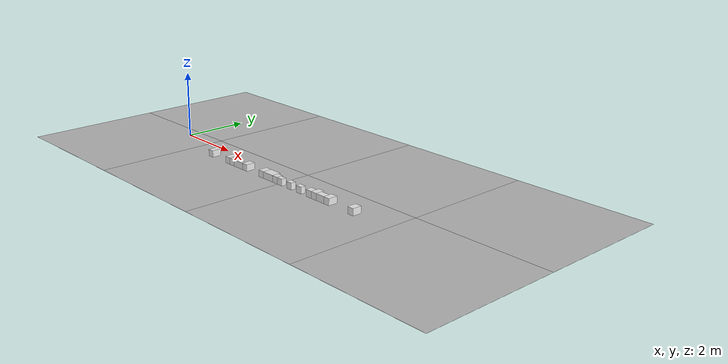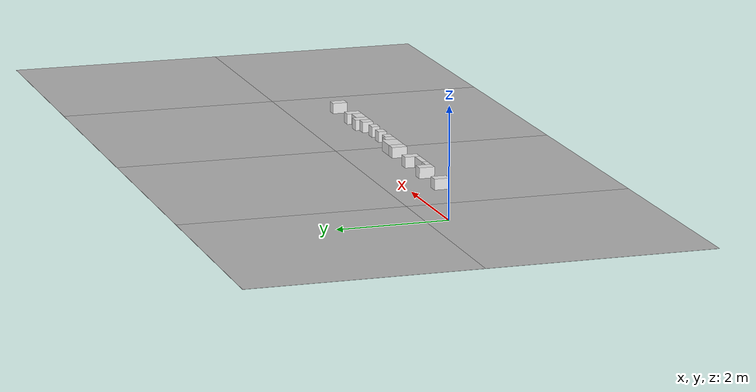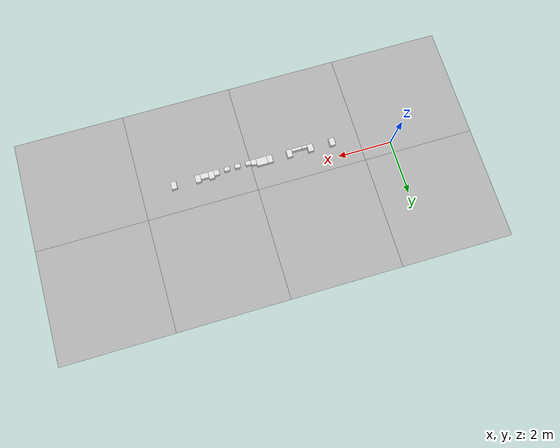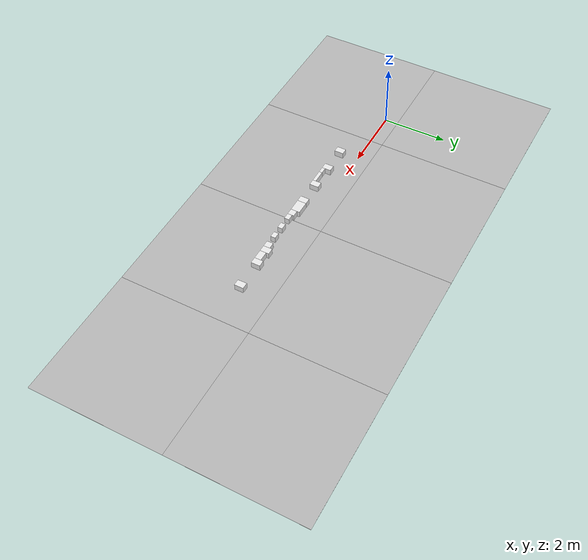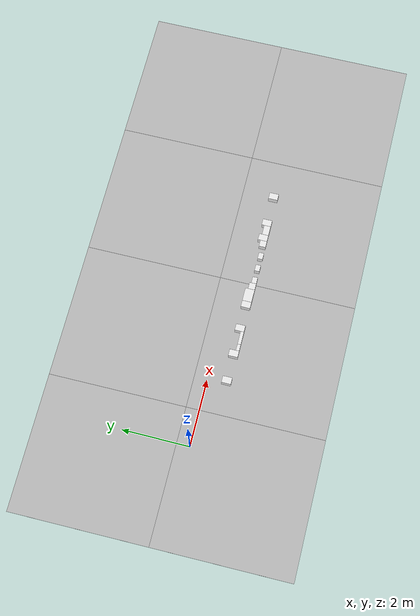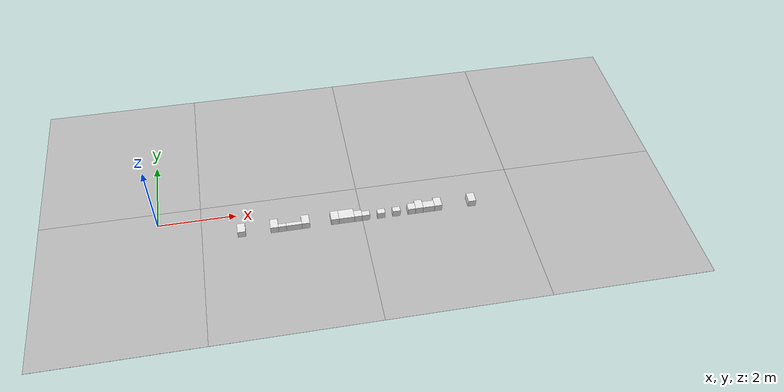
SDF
<sdf version='1.6'><world name='default'>
    <light name='sun_light' type='directional'>
      <pose frame=''>0 0 10 0 -0 0</pose>
      <diffuse>0.5 0.5 0.5 1</diffuse>
      <specular>0.1 0.1 0.1 1</specular>
      <direction>0.1 0.1 -0.9</direction>
      <attenuation>
        <range>20</range>
        <constant>0.5</constant>
        <linear>0.01</linear>
        <quadratic>0.001</quadratic>
      </attenuation>
      <cast_shadows>1</cast_shadows>
    </light>

    <model name='Tile/0-0'>
      <static>1</static>
      <link name='link'>
        <collision name='collision'>
          <geometry>
            <plane>
              <normal>0 0 1</normal>
              <size>4.096 4.096</size>
            </plane>
          </geometry>
          <surface>
            <friction>
              <ode>
                <mu>100</mu>
                <mu2>50</mu2>
              </ode>
              <torsional>
                <ode/>
              </torsional>
            </friction>
            <contact>
              <ode/>
            </contact>
            <bounce/>
          </surface>
          <max_contacts>10</max_contacts>
        </collision>
        <visual name='visual'>
          <cast_shadows>0</cast_shadows>
          <geometry>
            <plane>
              <normal>0 0 1</normal>
              <size>4.096 4.096</size>
            </plane>
          </geometry>
          <material>
            <script>
              <uri>file://materials/scripts</uri>
              <uri>file://materials/textures</uri>
              <name>Tile/aa44efc093d15b0d016b671cb8dad8b9b5925cd42bc6b331ef31decf4ba6863e</name>
            </script>
          </material>
        </visual>
        <self_collide>0</self_collide>
        <enable_wind>0</enable_wind>
        <kinematic>0</kinematic>
      </link>
      <pose frame=''>-0.952 -1.6520000000000001 0 0 -0 0</pose>
    </model>

    <model name='Tile/0-1'>
      <static>1</static>
      <link name='link'>
        <collision name='collision'>
          <geometry>
            <plane>
              <normal>0 0 1</normal>
              <size>4.096 4.096</size>
            </plane>
          </geometry>
          <surface>
            <friction>
              <ode>
                <mu>100</mu>
                <mu2>50</mu2>
              </ode>
              <torsional>
                <ode/>
              </torsional>
            </friction>
            <contact>
              <ode/>
            </contact>
            <bounce/>
          </surface>
          <max_contacts>10</max_contacts>
        </collision>
        <visual name='visual'>
          <cast_shadows>0</cast_shadows>
          <geometry>
            <plane>
              <normal>0 0 1</normal>
              <size>4.096 4.096</size>
            </plane>
          </geometry>
          <material>
            <script>
              <uri>file://materials/scripts</uri>
              <uri>file://materials/textures</uri>
              <name>Tile/6681b896b1587d54cb69aadeb5fb7247b4d6d500490292053e67105ac88ca889</name>
            </script>
          </material>
        </visual>
        <self_collide>0</self_collide>
        <enable_wind>0</enable_wind>
        <kinematic>0</kinematic>
      </link>
      <pose frame=''>-0.952 2.444 0 0 -0 0</pose>
    </model>

    <model name='Tile/1-0'>
      <static>1</static>
      <link name='link'>
        <collision name='collision'>
          <geometry>
            <plane>
              <normal>0 0 1</normal>
              <size>4.096 4.096</size>
            </plane>
          </geometry>
          <surface>
            <friction>
              <ode>
                <mu>100</mu>
                <mu2>50</mu2>
              </ode>
              <torsional>
                <ode/>
              </torsional>
            </friction>
            <contact>
              <ode/>
            </contact>
            <bounce/>
          </surface>
          <max_contacts>10</max_contacts>
        </collision>
        <visual name='visual'>
          <cast_shadows>0</cast_shadows>
          <geometry>
            <plane>
              <normal>0 0 1</normal>
              <size>4.096 4.096</size>
            </plane>
          </geometry>
          <material>
            <script>
              <uri>file://materials/scripts</uri>
              <uri>file://materials/textures</uri>
              <name>Tile/baae8030f17b517fedd6a6c1b124e129e2d28cf6dd4c158f0819fbb08102966b</name>
            </script>
          </material>
        </visual>
        <self_collide>0</self_collide>
        <enable_wind>0</enable_wind>
        <kinematic>0</kinematic>
      </link>
      <pose frame=''>3.144 -1.6520000000000001 0 0 -0 0</pose>
    </model>

    <model name='Tile/1-1'>
      <static>1</static>
      <link name='link'>
        <collision name='collision'>
          <geometry>
            <plane>
              <normal>0 0 1</normal>
              <size>4.096 4.096</size>
            </plane>
          </geometry>
          <surface>
            <friction>
              <ode>
                <mu>100</mu>
                <mu2>50</mu2>
              </ode>
              <torsional>
                <ode/>
              </torsional>
            </friction>
            <contact>
              <ode/>
            </contact>
            <bounce/>
          </surface>
          <max_contacts>10</max_contacts>
        </collision>
        <visual name='visual'>
          <cast_shadows>0</cast_shadows>
          <geometry>
            <plane>
              <normal>0 0 1</normal>
              <size>4.096 4.096</size>
            </plane>
          </geometry>
          <material>
            <script>
              <uri>file://materials/scripts</uri>
              <uri>file://materials/textures</uri>
              <name>Tile/13957a6de1f2afce18d7f1f64dacc2f21295e26ccf498256b0e1a51002cd5706</name>
            </script>
          </material>
        </visual>
        <self_collide>0</self_collide>
        <enable_wind>0</enable_wind>
        <kinematic>0</kinematic>
      </link>
      <pose frame=''>3.144 2.444 0 0 -0 0</pose>
    </model>

    <model name='Tile/2-0'>
      <static>1</static>
      <link name='link'>
        <collision name='collision'>
          <geometry>
            <plane>
              <normal>0 0 1</normal>
              <size>4.096 4.096</size>
            </plane>
          </geometry>
          <surface>
            <friction>
              <ode>
                <mu>100</mu>
                <mu2>50</mu2>
              </ode>
              <torsional>
                <ode/>
              </torsional>
            </friction>
            <contact>
              <ode/>
            </contact>
            <bounce/>
          </surface>
          <max_contacts>10</max_contacts>
        </collision>
        <visual name='visual'>
          <cast_shadows>0</cast_shadows>
          <geometry>
            <plane>
              <normal>0 0 1</normal>
              <size>4.096 4.096</size>
            </plane>
          </geometry>
          <material>
            <script>
              <uri>file://materials/scripts</uri>
              <uri>file://materials/textures</uri>
              <name>Tile/5adffa9d7c132cee285d02684bd9f3409010dbf481c82b755540d98dcae398a6</name>
            </script>
          </material>
        </visual>
        <self_collide>0</self_collide>
        <enable_wind>0</enable_wind>
        <kinematic>0</kinematic>
      </link>
      <pose frame=''>7.24 -1.6520000000000001 0 0 -0 0</pose>
    </model>

    <model name='Tile/2-1'>
      <static>1</static>
      <link name='link'>
        <collision name='collision'>
          <geometry>
            <plane>
              <normal>0 0 1</normal>
              <size>4.096 4.096</size>
            </plane>
          </geometry>
          <surface>
            <friction>
              <ode>
                <mu>100</mu>
                <mu2>50</mu2>
              </ode>
              <torsional>
                <ode/>
              </torsional>
            </friction>
            <contact>
              <ode/>
            </contact>
            <bounce/>
          </surface>
          <max_contacts>10</max_contacts>
        </collision>
        <visual name='visual'>
          <cast_shadows>0</cast_shadows>
          <geometry>
            <plane>
              <normal>0 0 1</normal>
              <size>4.096 4.096</size>
            </plane>
          </geometry>
          <material>
            <script>
              <uri>file://materials/scripts</uri>
              <uri>file://materials/textures</uri>
              <name>Tile/13957a6de1f2afce18d7f1f64dacc2f21295e26ccf498256b0e1a51002cd5706</name>
            </script>
          </material>
        </visual>
        <self_collide>0</self_collide>
        <enable_wind>0</enable_wind>
        <kinematic>0</kinematic>
      </link>
      <pose frame=''>7.24 2.444 0 0 -0 0</pose>
    </model>

    <model name='Tile/3-0'>
      <static>1</static>
      <link name='link'>
        <collision name='collision'>
          <geometry>
            <plane>
              <normal>0 0 1</normal>
              <size>4.096 4.096</size>
            </plane>
          </geometry>
          <surface>
            <friction>
              <ode>
                <mu>100</mu>
                <mu2>50</mu2>
              </ode>
              <torsional>
                <ode/>
              </torsional>
            </friction>
            <contact>
              <ode/>
            </contact>
            <bounce/>
          </surface>
          <max_contacts>10</max_contacts>
        </collision>
        <visual name='visual'>
          <cast_shadows>0</cast_shadows>
          <geometry>
            <plane>
              <normal>0 0 1</normal>
              <size>4.096 4.096</size>
            </plane>
          </geometry>
          <material>
            <script>
              <uri>file://materials/scripts</uri>
              <uri>file://materials/textures</uri>
              <name>Tile/51d233b85cde462f4055010ae3425bc9865214a12565d0ea43b0c4c1eb77e453</name>
            </script>
          </material>
        </visual>
        <self_collide>0</self_collide>
        <enable_wind>0</enable_wind>
        <kinematic>0</kinematic>
      </link>
      <pose frame=''>11.336 -1.6520000000000001 0 0 -0 0</pose>
    </model>

    <model name='Tile/3-1'>
      <static>1</static>
      <link name='link'>
        <collision name='collision'>
          <geometry>
            <plane>
              <normal>0 0 1</normal>
              <size>4.096 4.096</size>
            </plane>
          </geometry>
          <surface>
            <friction>
              <ode>
                <mu>100</mu>
                <mu2>50</mu2>
              </ode>
              <torsional>
                <ode/>
              </torsional>
            </friction>
            <contact>
              <ode/>
            </contact>
            <bounce/>
          </surface>
          <max_contacts>10</max_contacts>
        </collision>
        <visual name='visual'>
          <cast_shadows>0</cast_shadows>
          <geometry>
            <plane>
              <normal>0 0 1</normal>
              <size>4.096 4.096</size>
            </plane>
          </geometry>
          <material>
            <script>
              <uri>file://materials/scripts</uri>
              <uri>file://materials/textures</uri>
              <name>Tile/411268dc0bdaaa82f6734e64b6a3a6cf1dd292dfc683d008b9b3f96255a1e28b</name>
            </script>
          </material>
        </visual>
        <self_collide>0</self_collide>
        <enable_wind>0</enable_wind>
        <kinematic>0</kinematic>
      </link>
      <pose frame=''>11.336 2.444 0 0 -0 0</pose>
    </model>

    <model name='Obstacle/-5/0'>
      <pose frame=''>2.1 -0.5599999999999999 0.1 0 0 -0.0</pose>
      <link name='link'>
        <inertial>
          <mass>10</mass>
          <inertia>
            <ixx>0.166667</ixx>
            <ixy>0</ixy>
            <ixz>0</ixz>
            <iyy>0.166667</iyy>
            <iyz>0</iyz>
            <izz>0.166667</izz>
          </inertia>
        </inertial>
        <collision name='collision'>
          <geometry>
            <box>
              <size>0.2 0.28 0.2</size>
            </box>
          </geometry>
          <max_contacts>10</max_contacts>
          <surface>
            <contact>
              <ode/>
            </contact>
            <bounce/>
            <friction>
              <torsional>
                <ode/>
              </torsional>
              <ode/>
            </friction>
          </surface>
        </collision>
        <visual name='visual'>
          <geometry>
            <box>
              <size>0.2 0.28 0.2</size>
            </box>
          </geometry>
          <material>
            <script>
              <name>Gazebo/White</name>
              <uri>file://media/materials/scripts/gazebo.material</uri>
            </script>
          </material>
        </visual>
        <self_collide>0</self_collide>
        <enable_wind>0</enable_wind>
        <kinematic>0</kinematic>
      </link>
    </model>

    <model name='Obstacle/-12/0'>
      <pose frame=''>2.93 -0.5599999999999999 0.1 0 0 -0.0</pose>
      <link name='link'>
        <inertial>
          <mass>10</mass>
          <inertia>
            <ixx>0.166667</ixx>
            <ixy>0</ixy>
            <ixz>0</ixz>
            <iyy>0.166667</iyy>
            <iyz>0</iyz>
            <izz>0.166667</izz>
          </inertia>
        </inertial>
        <collision name='collision'>
          <geometry>
            <box>
              <size>0.2 0.28 0.2</size>
            </box>
          </geometry>
          <max_contacts>10</max_contacts>
          <surface>
            <contact>
              <ode/>
            </contact>
            <bounce/>
            <friction>
              <torsional>
                <ode/>
              </torsional>
              <ode/>
            </friction>
          </surface>
        </collision>
        <visual name='visual'>
          <geometry>
            <box>
              <size>0.2 0.28 0.2</size>
            </box>
          </geometry>
          <material>
            <script>
              <name>Gazebo/White</name>
              <uri>file://media/materials/scripts/gazebo.material</uri>
            </script>
          </material>
        </visual>
        <self_collide>0</self_collide>
        <enable_wind>0</enable_wind>
        <kinematic>0</kinematic>
      </link>
    </model>

    <model name='Obstacle/-16/0'>
      <pose frame=''>3.1300000000000003 -0.6499999999999999 0.1 0 0 -0.0</pose>
      <link name='link'>
        <inertial>
          <mass>10</mass>
          <inertia>
            <ixx>0.166667</ixx>
            <ixy>0</ixy>
            <ixz>0</ixz>
            <iyy>0.166667</iyy>
            <iyz>0</iyz>
            <izz>0.166667</izz>
          </inertia>
        </inertial>
        <collision name='collision'>
          <geometry>
            <box>
              <size>0.2 0.1 0.2</size>
            </box>
          </geometry>
          <max_contacts>10</max_contacts>
          <surface>
            <contact>
              <ode/>
            </contact>
            <bounce/>
            <friction>
              <torsional>
                <ode/>
              </torsional>
              <ode/>
            </friction>
          </surface>
        </collision>
        <visual name='visual'>
          <geometry>
            <box>
              <size>0.2 0.1 0.2</size>
            </box>
          </geometry>
          <material>
            <script>
              <name>Gazebo/White</name>
              <uri>file://media/materials/scripts/gazebo.material</uri>
            </script>
          </material>
        </visual>
        <self_collide>0</self_collide>
        <enable_wind>0</enable_wind>
        <kinematic>0</kinematic>
      </link>
    </model>

    <model name='Obstacle/-20/0'>
      <pose frame=''>3.4300000000000006 -0.6499999999999999 0.1 0 0 -0.0</pose>
      <link name='link'>
        <inertial>
          <mass>10</mass>
          <inertia>
            <ixx>0.166667</ixx>
            <ixy>0</ixy>
            <ixz>0</ixz>
            <iyy>0.166667</iyy>
            <iyz>0</iyz>
            <izz>0.166667</izz>
          </inertia>
        </inertial>
        <collision name='collision'>
          <geometry>
            <box>
              <size>0.4 0.1 0.2</size>
            </box>
          </geometry>
          <max_contacts>10</max_contacts>
          <surface>
            <contact>
              <ode/>
            </contact>
            <bounce/>
            <friction>
              <torsional>
                <ode/>
              </torsional>
              <ode/>
            </friction>
          </surface>
        </collision>
        <visual name='visual'>
          <geometry>
            <box>
              <size>0.4 0.1 0.2</size>
            </box>
          </geometry>
          <material>
            <script>
              <name>Gazebo/White</name>
              <uri>file://media/materials/scripts/gazebo.material</uri>
            </script>
          </material>
        </visual>
        <self_collide>0</self_collide>
        <enable_wind>0</enable_wind>
        <kinematic>0</kinematic>
      </link>
    </model>

    <model name='Obstacle/-24/0'>
      <pose frame=''>3.7300000000000004 -0.5599999999999999 0.1 0 0 -0.0</pose>
      <link name='link'>
        <inertial>
          <mass>10</mass>
          <inertia>
            <ixx>0.166667</ixx>
            <ixy>0</ixy>
            <ixz>0</ixz>
            <iyy>0.166667</iyy>
            <iyz>0</iyz>
            <izz>0.166667</izz>
          </inertia>
        </inertial>
        <collision name='collision'>
          <geometry>
            <box>
              <size>0.2 0.28 0.2</size>
            </box>
          </geometry>
          <max_contacts>10</max_contacts>
          <surface>
            <contact>
              <ode/>
            </contact>
            <bounce/>
            <friction>
              <torsional>
                <ode/>
              </torsional>
              <ode/>
            </friction>
          </surface>
        </collision>
        <visual name='visual'>
          <geometry>
            <box>
              <size>0.2 0.28 0.2</size>
            </box>
          </geometry>
          <material>
            <script>
              <name>Gazebo/White</name>
              <uri>file://media/materials/scripts/gazebo.material</uri>
            </script>
          </material>
        </visual>
        <self_collide>0</self_collide>
        <enable_wind>0</enable_wind>
        <kinematic>0</kinematic>
      </link>
    </model>

    <model name='Obstacle/-31/0'>
      <pose frame=''>4.48 -0.5599999999999999 0.1 0 0 -0.0</pose>
      <link name='link'>
        <inertial>
          <mass>10</mass>
          <inertia>
            <ixx>0.166667</ixx>
            <ixy>0</ixy>
            <ixz>0</ixz>
            <iyy>0.166667</iyy>
            <iyz>0</iyz>
            <izz>0.166667</izz>
          </inertia>
        </inertial>
        <collision name='collision'>
          <geometry>
            <box>
              <size>0.2 0.28 0.2</size>
            </box>
          </geometry>
          <max_contacts>10</max_contacts>
          <surface>
            <contact>
              <ode/>
            </contact>
            <bounce/>
            <friction>
              <torsional>
                <ode/>
              </torsional>
              <ode/>
            </friction>
          </surface>
        </collision>
        <visual name='visual'>
          <geometry>
            <box>
              <size>0.2 0.28 0.2</size>
            </box>
          </geometry>
          <material>
            <script>
              <name>Gazebo/White</name>
              <uri>file://media/materials/scripts/gazebo.material</uri>
            </script>
          </material>
        </visual>
        <self_collide>0</self_collide>
        <enable_wind>0</enable_wind>
        <kinematic>0</kinematic>
      </link>
    </model>

    <model name='Obstacle/-35/0'>
      <pose frame=''>4.780000000000001 -0.5599999999999999 0.1 0 0 -0.0</pose>
      <link name='link'>
        <inertial>
          <mass>10</mass>
          <inertia>
            <ixx>0.166667</ixx>
            <ixy>0</ixy>
            <ixz>0</ixz>
            <iyy>0.166667</iyy>
            <iyz>0</iyz>
            <izz>0.166667</izz>
          </inertia>
        </inertial>
        <collision name='collision'>
          <geometry>
            <box>
              <size>0.4 0.28 0.2</size>
            </box>
          </geometry>
          <max_contacts>10</max_contacts>
          <surface>
            <contact>
              <ode/>
            </contact>
            <bounce/>
            <friction>
              <torsional>
                <ode/>
              </torsional>
              <ode/>
            </friction>
          </surface>
        </collision>
        <visual name='visual'>
          <geometry>
            <box>
              <size>0.4 0.28 0.2</size>
            </box>
          </geometry>
          <material>
            <script>
              <name>Gazebo/White</name>
              <uri>file://media/materials/scripts/gazebo.material</uri>
            </script>
          </material>
        </visual>
        <self_collide>0</self_collide>
        <enable_wind>0</enable_wind>
        <kinematic>0</kinematic>
      </link>
    </model>

    <model name='Obstacle/-39/0'>
      <pose frame=''>5.080000000000001 -0.6 0.1 0 0 -0.0</pose>
      <link name='link'>
        <inertial>
          <mass>10</mass>
          <inertia>
            <ixx>0.166667</ixx>
            <ixy>0</ixy>
            <ixz>0</ixz>
            <iyy>0.166667</iyy>
            <iyz>0</iyz>
            <izz>0.166667</izz>
          </inertia>
        </inertial>
        <collision name='collision'>
          <geometry>
            <box>
              <size>0.2 0.2 0.2</size>
            </box>
          </geometry>
          <max_contacts>10</max_contacts>
          <surface>
            <contact>
              <ode/>
            </contact>
            <bounce/>
            <friction>
              <torsional>
                <ode/>
              </torsional>
              <ode/>
            </friction>
          </surface>
        </collision>
        <visual name='visual'>
          <geometry>
            <box>
              <size>0.2 0.2 0.2</size>
            </box>
          </geometry>
          <material>
            <script>
              <name>Gazebo/White</name>
              <uri>file://media/materials/scripts/gazebo.material</uri>
            </script>
          </material>
        </visual>
        <self_collide>0</self_collide>
        <enable_wind>0</enable_wind>
        <kinematic>0</kinematic>
      </link>
    </model>

    <model name='Obstacle/-43/0'>
      <pose frame=''>5.280000000000001 -0.625 0.1 0 0 -0.0</pose>
      <link name='link'>
        <inertial>
          <mass>10</mass>
          <inertia>
            <ixx>0.166667</ixx>
            <ixy>0</ixy>
            <ixz>0</ixz>
            <iyy>0.166667</iyy>
            <iyz>0</iyz>
            <izz>0.166667</izz>
          </inertia>
        </inertial>
        <collision name='collision'>
          <geometry>
            <box>
              <size>0.2 0.15 0.2</size>
            </box>
          </geometry>
          <max_contacts>10</max_contacts>
          <surface>
            <contact>
              <ode/>
            </contact>
            <bounce/>
            <friction>
              <torsional>
                <ode/>
              </torsional>
              <ode/>
            </friction>
          </surface>
        </collision>
        <visual name='visual'>
          <geometry>
            <box>
              <size>0.2 0.15 0.2</size>
            </box>
          </geometry>
          <material>
            <script>
              <name>Gazebo/White</name>
              <uri>file://media/materials/scripts/gazebo.material</uri>
            </script>
          </material>
        </visual>
        <self_collide>0</self_collide>
        <enable_wind>0</enable_wind>
        <kinematic>0</kinematic>
      </link>
    </model>

    <model name='Obstacle/-50/0'>
      <pose frame=''>5.6800000000000015 -0.625 0.1 0 0 -0.0</pose>
      <link name='link'>
        <inertial>
          <mass>10</mass>
          <inertia>
            <ixx>0.166667</ixx>
            <ixy>0</ixy>
            <ixz>0</ixz>
            <iyy>0.166667</iyy>
            <iyz>0</iyz>
            <izz>0.166667</izz>
          </inertia>
        </inertial>
        <collision name='collision'>
          <geometry>
            <box>
              <size>0.2 0.15 0.2</size>
            </box>
          </geometry>
          <max_contacts>10</max_contacts>
          <surface>
            <contact>
              <ode/>
            </contact>
            <bounce/>
            <friction>
              <torsional>
                <ode/>
              </torsional>
              <ode/>
            </friction>
          </surface>
        </collision>
        <visual name='visual'>
          <geometry>
            <box>
              <size>0.2 0.15 0.2</size>
            </box>
          </geometry>
          <material>
            <script>
              <name>Gazebo/White</name>
              <uri>file://media/materials/scripts/gazebo.material</uri>
            </script>
          </material>
        </visual>
        <self_collide>0</self_collide>
        <enable_wind>0</enable_wind>
        <kinematic>0</kinematic>
      </link>
    </model>

    <model name='Obstacle/-57/0'>
      <pose frame=''>6.080000000000002 -0.625 0.1 0 0 -0.0</pose>
      <link name='link'>
        <inertial>
          <mass>10</mass>
          <inertia>
            <ixx>0.166667</ixx>
            <ixy>0</ixy>
            <ixz>0</ixz>
            <iyy>0.166667</iyy>
            <iyz>0</iyz>
            <izz>0.166667</izz>
          </inertia>
        </inertial>
        <collision name='collision'>
          <geometry>
            <box>
              <size>0.2 0.15 0.2</size>
            </box>
          </geometry>
          <max_contacts>10</max_contacts>
          <surface>
            <contact>
              <ode/>
            </contact>
            <bounce/>
            <friction>
              <torsional>
                <ode/>
              </torsional>
              <ode/>
            </friction>
          </surface>
        </collision>
        <visual name='visual'>
          <geometry>
            <box>
              <size>0.2 0.15 0.2</size>
            </box>
          </geometry>
          <material>
            <script>
              <name>Gazebo/White</name>
              <uri>file://media/materials/scripts/gazebo.material</uri>
            </script>
          </material>
        </visual>
        <self_collide>0</self_collide>
        <enable_wind>0</enable_wind>
        <kinematic>0</kinematic>
      </link>
    </model>

    <model name='Obstacle/-64/0'>
      <pose frame=''>6.480000000000002 -0.6 0.1 0 0 -0.0</pose>
      <link name='link'>
        <inertial>
          <mass>10</mass>
          <inertia>
            <ixx>0.166667</ixx>
            <ixy>0</ixy>
            <ixz>0</ixz>
            <iyy>0.166667</iyy>
            <iyz>0</iyz>
            <izz>0.166667</izz>
          </inertia>
        </inertial>
        <collision name='collision'>
          <geometry>
            <box>
              <size>0.2 0.2 0.2</size>
            </box>
          </geometry>
          <max_contacts>10</max_contacts>
          <surface>
            <contact>
              <ode/>
            </contact>
            <bounce/>
            <friction>
              <torsional>
                <ode/>
              </torsional>
              <ode/>
            </friction>
          </surface>
        </collision>
        <visual name='visual'>
          <geometry>
            <box>
              <size>0.2 0.2 0.2</size>
            </box>
          </geometry>
          <material>
            <script>
              <name>Gazebo/White</name>
              <uri>file://media/materials/scripts/gazebo.material</uri>
            </script>
          </material>
        </visual>
        <self_collide>0</self_collide>
        <enable_wind>0</enable_wind>
        <kinematic>0</kinematic>
      </link>
    </model>

    <model name='Obstacle/-68/0'>
      <pose frame=''>6.680000000000002 -0.5599999999999999 0.1 0 0 -0.0</pose>
      <link name='link'>
        <inertial>
          <mass>10</mass>
          <inertia>
            <ixx>0.166667</ixx>
            <ixy>0</ixy>
            <ixz>0</ixz>
            <iyy>0.166667</iyy>
            <iyz>0</iyz>
            <izz>0.166667</izz>
          </inertia>
        </inertial>
        <collision name='collision'>
          <geometry>
            <box>
              <size>0.2 0.28 0.2</size>
            </box>
          </geometry>
          <max_contacts>10</max_contacts>
          <surface>
            <contact>
              <ode/>
            </contact>
            <bounce/>
            <friction>
              <torsional>
                <ode/>
              </torsional>
              <ode/>
            </friction>
          </surface>
        </collision>
        <visual name='visual'>
          <geometry>
            <box>
              <size>0.2 0.28 0.2</size>
            </box>
          </geometry>
          <material>
            <script>
              <name>Gazebo/White</name>
              <uri>file://media/materials/scripts/gazebo.material</uri>
            </script>
          </material>
        </visual>
        <self_collide>0</self_collide>
        <enable_wind>0</enable_wind>
        <kinematic>0</kinematic>
      </link>
    </model>

    <model name='Obstacle/-72/0'>
      <pose frame=''>6.930000000000003 -0.6 0.1 0 0 -0.0</pose>
      <link name='link'>
        <inertial>
          <mass>10</mass>
          <inertia>
            <ixx>0.166667</ixx>
            <ixy>0</ixy>
            <ixz>0</ixz>
            <iyy>0.166667</iyy>
            <iyz>0</iyz>
            <izz>0.166667</izz>
          </inertia>
        </inertial>
        <collision name='collision'>
          <geometry>
            <box>
              <size>0.3 0.2 0.2</size>
            </box>
          </geometry>
          <max_contacts>10</max_contacts>
          <surface>
            <contact>
              <ode/>
            </contact>
            <bounce/>
            <friction>
              <torsional>
                <ode/>
              </torsional>
              <ode/>
            </friction>
          </surface>
        </collision>
        <visual name='visual'>
          <geometry>
            <box>
              <size>0.3 0.2 0.2</size>
            </box>
          </geometry>
          <material>
            <script>
              <name>Gazebo/White</name>
              <uri>file://media/materials/scripts/gazebo.material</uri>
            </script>
          </material>
        </visual>
        <self_collide>0</self_collide>
        <enable_wind>0</enable_wind>
        <kinematic>0</kinematic>
      </link>
    </model>

    <model name='Obstacle/-76/0'>
      <pose frame=''>7.180000000000002 -0.5599999999999999 0.1 0 0 -0.0</pose>
      <link name='link'>
        <inertial>
          <mass>10</mass>
          <inertia>
            <ixx>0.166667</ixx>
            <ixy>0</ixy>
            <ixz>0</ixz>
            <iyy>0.166667</iyy>
            <iyz>0</iyz>
            <izz>0.166667</izz>
          </inertia>
        </inertial>
        <collision name='collision'>
          <geometry>
            <box>
              <size>0.2 0.28 0.2</size>
            </box>
          </geometry>
          <max_contacts>10</max_contacts>
          <surface>
            <contact>
              <ode/>
            </contact>
            <bounce/>
            <friction>
              <torsional>
                <ode/>
              </torsional>
              <ode/>
            </friction>
          </surface>
        </collision>
        <visual name='visual'>
          <geometry>
            <box>
              <size>0.2 0.28 0.2</size>
            </box>
          </geometry>
          <material>
            <script>
              <name>Gazebo/White</name>
              <uri>file://media/materials/scripts/gazebo.material</uri>
            </script>
          </material>
        </visual>
        <self_collide>0</self_collide>
        <enable_wind>0</enable_wind>
        <kinematic>0</kinematic>
      </link>
    </model>

    <model name='Obstacle/-83/0'>
      <pose frame=''>8.080000000000004 -0.5599999999999999 0.1 0 0 -0.0</pose>
      <link name='link'>
        <inertial>
          <mass>10</mass>
          <inertia>
            <ixx>0.166667</ixx>
            <ixy>0</ixy>
            <ixz>0</ixz>
            <iyy>0.166667</iyy>
            <iyz>0</iyz>
            <izz>0.166667</izz>
          </inertia>
        </inertial>
        <collision name='collision'>
          <geometry>
            <box>
              <size>0.2 0.28 0.2</size>
            </box>
          </geometry>
          <max_contacts>10</max_contacts>
          <surface>
            <contact>
              <ode/>
            </contact>
            <bounce/>
            <friction>
              <torsional>
                <ode/>
              </torsional>
              <ode/>
            </friction>
          </surface>
        </collision>
        <visual name='visual'>
          <geometry>
            <box>
              <size>0.2 0.28 0.2</size>
            </box>
          </geometry>
          <material>
            <script>
              <name>Gazebo/White</name>
              <uri>file://media/materials/scripts/gazebo.material</uri>
            </script>
          </material>
        </visual>
        <self_collide>0</self_collide>
        <enable_wind>0</enable_wind>
        <kinematic>0</kinematic>
      </link>
    </model>
    </world></sdf>
